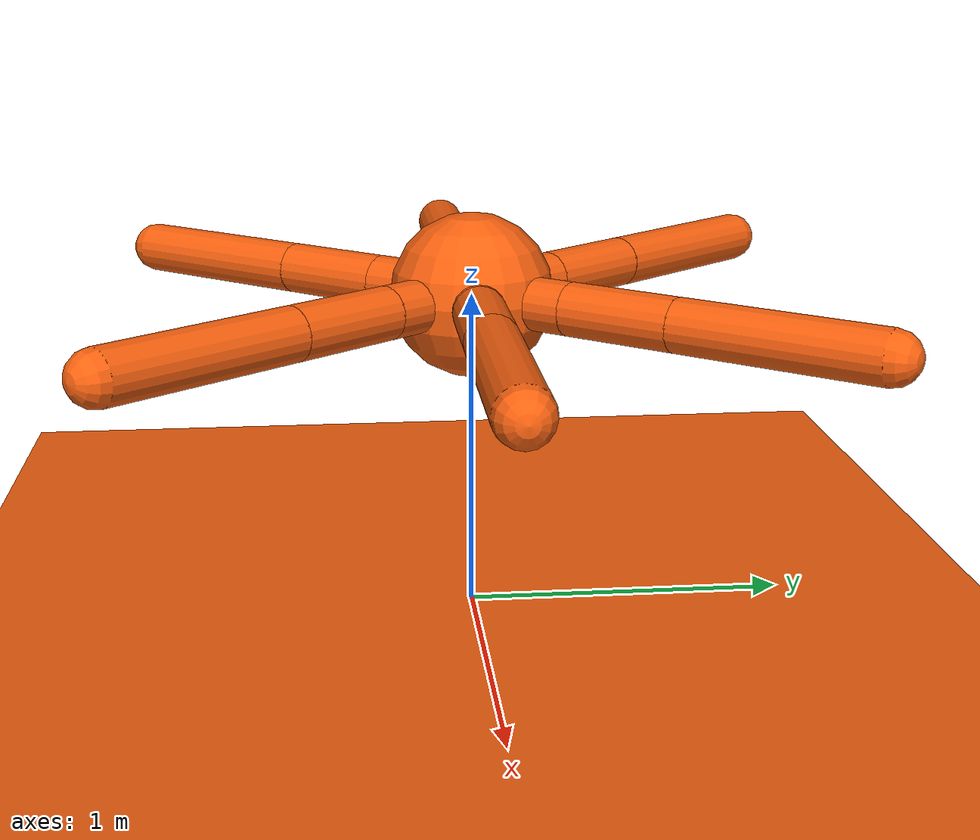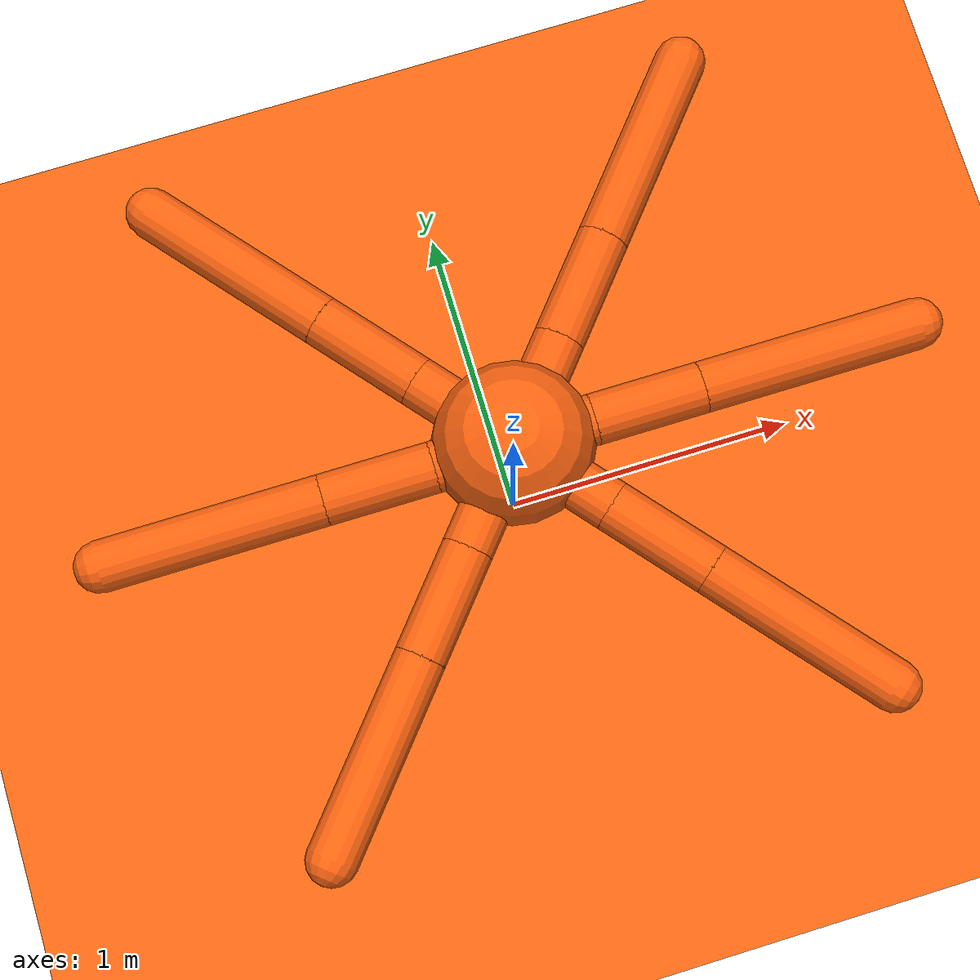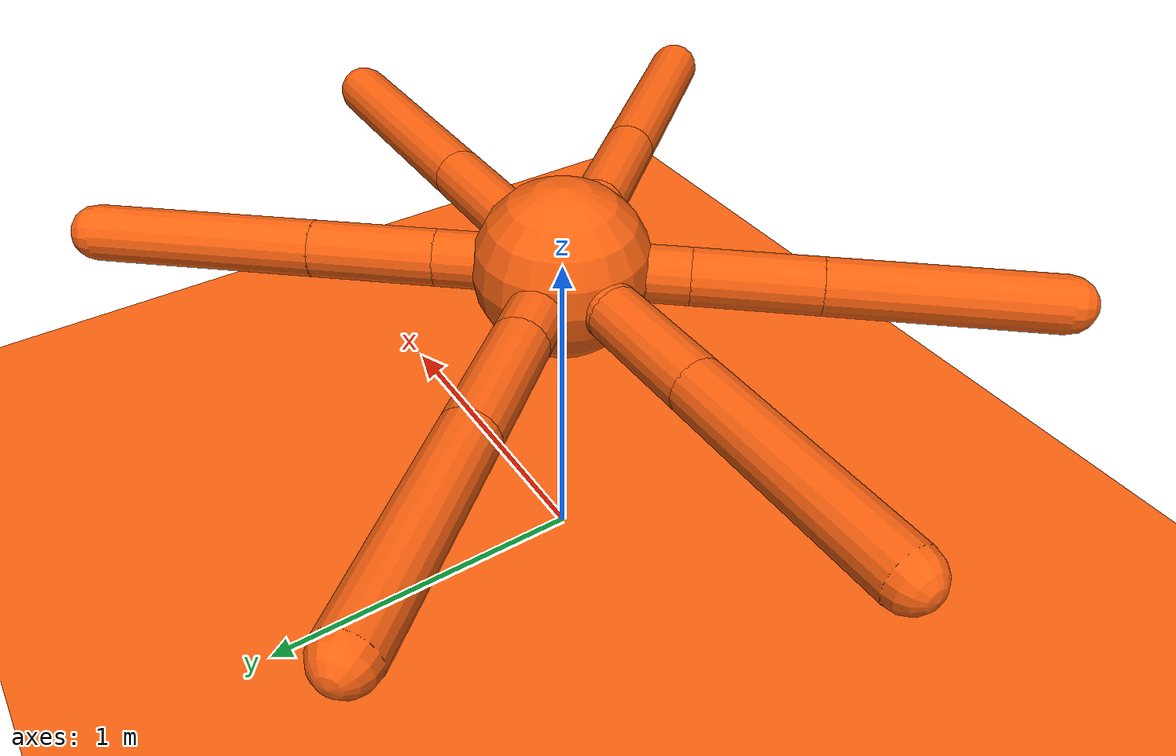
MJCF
<mujoco model="ant">
  <custom>
    <numeric data="0.0 0.0 0.55 1.0 0.0 0.0 0.0 0.0 1.0 0.0 -1.0 0.0 -1.0 0.0 1.0" name="init_qpos"/>
  </custom>

  <default>
    <joint armature="0.01" damping="0.1" limited="true"/>
    <geom condim="3" density="5.0" friction="1.5 0.1 0.1" margin="0.01" rgba="0.97 0.38 0.06 1"/>
  </default>

  <compiler inertiafromgeom="true" angle="degree"/>

  <option timestep="0.016" iterations="50" tolerance="1e-10" solver="Newton" jacobian="dense" cone="pyramidal"/>

  <size nconmax="50" njmax="200" nstack="10000"/>
  <visual>
      <map force="0.1" zfar="30"/>
      <rgba haze="0.15 0.25 0.35 1"/>
      <quality shadowsize="2048"/>
      <global offwidth="800" offheight="800"/>
  </visual>

  <asset>
      <texture type="skybox" builtin="gradient" rgb1="0.3 0.5 0.7" rgb2="0 0 0" width="512" height="512"/>
      <texture name="texplane" type="2d" builtin="checker" rgb1=".2 .3 .4" rgb2=".1 0.15 0.2" width="512" height="512" mark="cross" markrgb=".8 .8 .8"/>
      <texture name="texgeom" type="cube" builtin="flat" mark="cross" width="127" height="1278"
          rgb1="0.8 0.6 0.4" rgb2="0.8 0.6 0.4" markrgb="1 1 1" random="0.01"/>

      <material name="matplane" reflectance="0.3" texture="texplane" texrepeat="1 1" texuniform="true"/>
      <material name="matgeom" texture="texgeom" texuniform="true" rgba="0.8 0.6 .4 1"/>
  </asset>

  <worldbody>
    <geom name="floor" pos="0 0 0" size="0 0 .25" type="plane" material="matplane" condim="3"/>

    <light directional="false" diffuse=".2 .2 .2" specular="0 0 0" pos="0 0 5" dir="0 0 -1" castshadow="false"/>
    <light mode="targetbodycom" target="torso" directional="false" diffuse=".8 .8 .8" specular="0.3 0.3 0.3" pos="0 0 4.0" dir="0 0 -1"/>

    <body name="torso" pos="0 0 0.75">
      <geom name="torso_geom" pos="0 0 0.25" size="0.25" type="sphere"/>
      <freejoint name="root" pos="0 0 0"/>

      <!-- Back left leg -->
      <body name="back_left_leg" pos="0 0 0.25">
        <geom fromto="0 0 0 0.225 0.268 0" name="aux_1_geom" size="0.08" type="capsule"/>
        <body name="aux_11" pos="0.225 0.268 0">
          <joint axis="0 0 1" name="hip_1" pos="0 0 0" range="-30 30" type="hinge"/>
          <geom fromto="0 0 0 0.225 0.268 0" name="back_left_leg_geom" size="0.08" type="capsule"/>
          <body name="aux_12_foot" pos="0.225 0.268 0">
            <joint axis="-1 1 0" name="ankle_1" pos="0 0 0" range="30 70" type="hinge"/>
            <geom fromto="0 0 0 0.405 0.483 0" name="back_left_ankle_geom" size="0.08" type="capsule"/>
          </body>
        </body>
      </body>

      <!-- Back right leg -->
      <body name="back_right_leg" pos="0 0 0.25">
        <geom fromto="0 0 0 -0.225 0.268 0" name="aux_2_geom" size="0.08" type="capsule"/>
        <body name="aux_21" pos="-0.225 0.268 0">
          <joint axis="0 0 1" name="hip_2" pos="0 0 0" range="-30 30" type="hinge"/>
          <geom fromto="0 0 0 -0.225 0.268 0" name="back_right_leg_geom" size="0.08" type="capsule"/>
          <body name="aux_22_foot" pos="-0.225 0.268 0">
            <joint axis="1 1 0" name="ankle_2" pos="0 0 0" range="-70 -30" type="hinge"/>
            <geom fromto="0 0 0 -0.405 0.483 0" name="back_right_ankle_geom" size="0.08" type="capsule"/>
          </body>
        </body>
      </body>

      <!-- Middle right leg -->
      <body name="middle_right_leg" pos="0 0 0.25">
        <geom fromto="0 0 0 -0.25 0 0" name="aux_3_geom" size="0.08" type="capsule"/>
        <body name="aux_31" pos="-0.25 0 0">
          <joint axis="0 0 1" name="hip_3" pos="0 0 0" range="-30 30" type="hinge"/>
          <geom fromto="0 0 0 -0.343 0 0" name="middle_right_leg_geom" size="0.08" type="capsule"/>
          <body name="aux_32_foot" pos="-0.343 0 0">
            <joint axis="0 1 0" name="ankle_3" pos="0 0 0" range="-70 -30" type="hinge"/>
            <geom fromto="0 0 0 -0.687 0 0" name="middle_right_ankle_geom" size="0.08" type="capsule"/>
          </body>
        </body>
      </body>

      <!-- Middle left leg -->
      <body name="middle_left_leg" pos="0 0 0.25">
        <geom fromto="0 0 0 0.25 0 0" name="aux_4_geom" size="0.08" type="capsule"/>
        <body name="aux_41" pos="0.25 0 0">
          <joint axis="0 0 1" name="hip_4" pos="0 0 0" range="-30 30" type="hinge"/>
          <geom fromto="0 0 0 0.343 0 0" name="middle_left_leg_geom" size="0.08" type="capsule"/>
          <body name="aux_42_foot" pos="0.343 0 0">
            <joint axis="0 1 0" name="ankle_4" pos="0 0 0" range="30 70" type="hinge"/>
            <geom fromto="0 0 0 0.687 0 0" name="middle_left_ankle_geom" size="0.08" type="capsule"/>
          </body>
        </body>
      </body>

      <!-- Front right leg -->
      <body name="front_right_leg" pos="0 0 0.25">
        <geom fromto="0 0 0 -0.225 -0.268 0" name="aux_5_geom" size="0.08" type="capsule"/>
        <body name="aux_51" pos="-0.225 -0.268 0">
          <joint axis="0 0 1" name="hip_5" pos="0 0 0" range="-30 30" type="hinge"/>
          <geom fromto="0 0 0 -0.225 -0.268 0" name="front_right_leg_geom" size="0.08" type="capsule"/>
          <body name="aux_52_foot" pos="-0.225 -0.268 0">
            <joint axis="-1 1 0" name="ankle_5" pos="0 0 0" range="-70 -30" type="hinge"/>
            <geom fromto="0 0 0 -0.405 -0.483 0" name="front_right_ankle_geom" size="0.08" type="capsule"/>
          </body>
        </body>
      </body>

      <!-- Front left leg -->
      <body name="front_left_leg" pos="0 0 0.25">
        <geom fromto="0 0 0 0.225 -0.268 0" name="aux_6_geom" size="0.08" type="capsule"/>
        <body name="aux_61" pos="0.225 -0.268 0">
          <joint axis="0 0 1" name="hip_6" pos="0 0 0" range="-30 30" type="hinge"/>
          <geom fromto="0 0 0 0.225 -0.268 0" name="front_left_leg_geom" size="0.08" type="capsule"/>
          <body name="aux_62_foot" pos="0.225 -0.268 0">
            <joint axis="1 1 0" name="ankle_6" pos="0 0 0" range="30 70" type="hinge"/>
            <geom fromto="0 0 0 0.405 -0.483 0" name="front_left_ankle_geom" size="0.08" type="capsule"/>
          </body>
        </body>
      </body>
    </body>
  </worldbody>

  <actuator>
    <motor ctrllimited="true" ctrlrange="-1.0 1.0" joint="hip_1" gear="150"/>
    <motor ctrllimited="true" ctrlrange="-1.0 1.0" joint="ankle_1" gear="150"/>
    <motor ctrllimited="true" ctrlrange="-1.0 1.0" joint="hip_2" gear="150"/>
    <motor ctrllimited="true" ctrlrange="-1.0 1.0" joint="ankle_2" gear="150"/>
    <motor ctrllimited="true" ctrlrange="-1.0 1.0" joint="hip_3" gear="150"/>
    <motor ctrllimited="true" ctrlrange="-1.0 1.0" joint="ankle_3" gear="150"/>
    <motor ctrllimited="true" ctrlrange="-1.0 1.0" joint="hip_4" gear="150"/>
    <motor ctrllimited="true" ctrlrange="-1.0 1.0" joint="ankle_4" gear="150"/>
    <motor ctrllimited="true" ctrlrange="-1.0 1.0" joint="hip_5" gear="150"/>
    <motor ctrllimited="true" ctrlrange="-1.0 1.0" joint="ankle_5" gear="150"/>
    <motor ctrllimited="true" ctrlrange="-1.0 1.0" joint="hip_6" gear="150"/>
    <motor ctrllimited="true" ctrlrange="-1.0 1.0" joint="ankle_6" gear="150"/>
  </actuator>

</mujoco>
